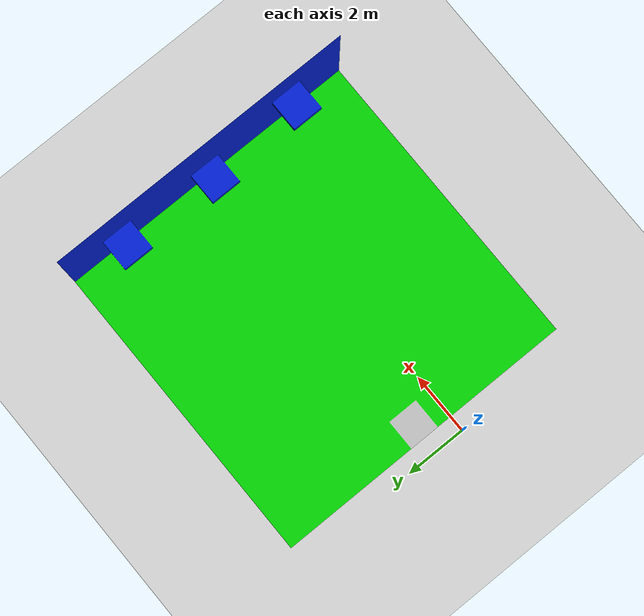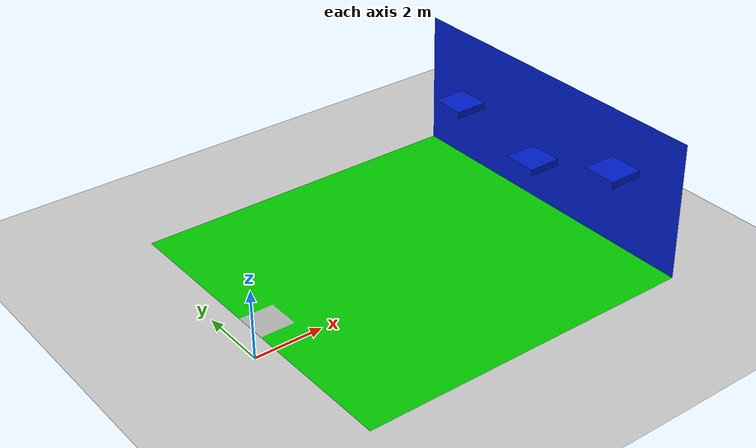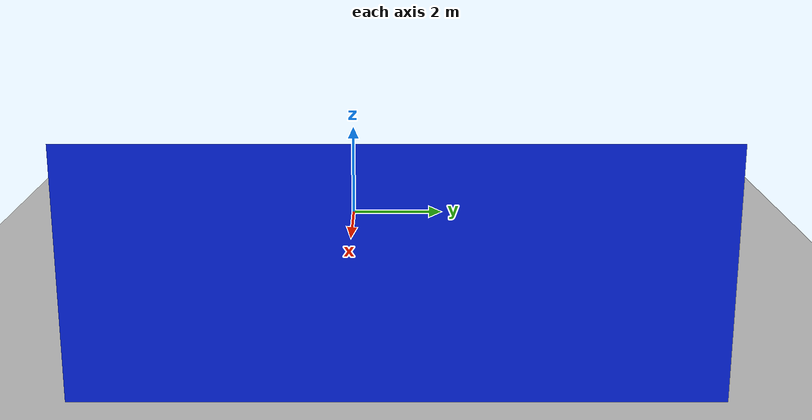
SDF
<sdf version="1.6">
 <world name="default">
  <light name="sun" type="directional">
   <pose>0 0 10 0 -0 0</pose>
   <diffuse>0.8 0.8 0.8 1</diffuse>
   <specular>0.2 0.2 0.2 1</specular>
   <attenuation>
    <range>1000</range>
    <constant>0.9</constant>
    <linear>0.01</linear>
    <quadratic>0.001</quadratic>
   </attenuation>
   <direction>-0.5 0.1 -0.9</direction>
  </light>
  <model name="ground_plane">
   <pose>0 0 0 0 -0 3.14159</pose>
   <static>1</static>
   <link name="link">
    <collision name="collision">
     <geometry><plane><normal>0 0 1</normal><size>100 100</size></plane></geometry>
     <surface>
      <contact><collide_bitmask>65535</collide_bitmask></contact>
      <friction><ode><mu>100</mu><mu2>50</mu2></ode></friction>
     </surface>
    </collision>
    <visual name="visual">
     <cast_shadows>0</cast_shadows>
     <geometry><plane><normal>0 0 1</normal><size>100 100</size></plane></geometry>
     <material>
      <script><uri>file://media/materials/scripts/gazebo.material</uri><name>Gazebo/Grey</name></script>
     </material>
    </visual>
   </link>
  </model>
  <gravity>0 0 -9.8</gravity>
  <magnetic_field>6e-06 2.3e-05 -4.2e-05</magnetic_field>
  <atmosphere type="adiabatic"/>
  <physics name="default_physics" default="0" type="ode">
   <max_step_size>0.001</max_step_size>
   <real_time_factor>1</real_time_factor>
   <real_time_update_rate>1000</real_time_update_rate>
  </physics>
  <scene><ambient>0.4 0.4 0.4 1</ambient><background>0.7 0.7 0.7 1</background><shadows>1</shadows></scene>
  <spherical_coordinates>
   <surface_model>EARTH_WGS84</surface_model>
   <latitude_deg>0</latitude_deg>
   <longitude_deg>0</longitude_deg>
   <elevation>0</elevation>
   <heading_deg>0</heading_deg>
  </spherical_coordinates>
  <model name="Arena KRTI 2020 Landing Pad">
   <pose>5.51768 0.987693 0.1 0 0 -3.14159</pose>
   <static>1</static>
   <link name="link">
    <collision name="collision">
     <geometry><mesh><uri>model://Arena_KRTI_Landing_Pad/meshes/mesh.dae</uri></mesh></geometry>
    </collision>
    <visual name="visual">
     <geometry><mesh><uri>model://Arena_KRTI_Landing_Pad/meshes/mesh.dae</uri></mesh></geometry>
    </visual>
   </link>
  </model>
  <light name="user_directional_light_0" type="directional">
   <pose>1.0662 -3.1799 1 0 -0 0</pose>
   <diffuse>0.5 0.5 0.5 1</diffuse>
   <specular>0.1 0.1 0.1 1</specular>
   <direction>0.1 0.1 -0.9</direction>
   <attenuation>
    <range>20</range>
    <constant>0.5</constant>
    <linear>0.01</linear>
    <quadratic>0.001</quadratic>
   </attenuation>
  </light>
  <light name="user_directional_light_1" type="directional">
   <pose>1.09378 5.18521 1 0 -0 0</pose>
   <diffuse>0.5 0.5 0.5 1</diffuse>
   <specular>0.1 0.1 0.1 1</specular>
   <direction>0.1 0.1 -0.9</direction>
   <attenuation>
    <range>20</range>
    <constant>0.5</constant>
    <linear>0.01</linear>
    <quadratic>0.001</quadratic>
   </attenuation>
  </light>
  <light name="user_directional_light_2" type="directional">
   <pose>9.58802 5.22221 1 0 -0 0</pose>
   <diffuse>0.5 0.5 0.5 1</diffuse>
   <specular>0.1 0.1 0.1 1</specular>
   <direction>0.1 0.1 -0.9</direction>
   <attenuation>
    <range>20</range>
    <constant>0.5</constant>
    <linear>0.01</linear>
    <quadratic>0.001</quadratic>
   </attenuation>
  </light>
  <light name="user_directional_light_3" type="directional">
   <pose>9.60212 -3.19689 1 0 -0 0</pose>
   <diffuse>0.5 0.5 0.5 1</diffuse>
   <specular>0.1 0.1 0.1 1</specular>
   <direction>0.1 0.1 -0.9</direction>
   <attenuation>
    <range>20</range>
    <constant>0.5</constant>
    <linear>0.01</linear>
    <quadratic>0.001</quadratic>
   </attenuation>
  </light>
  <light name="user_directional_light_4" type="directional">
   <pose>5.44813 0.987953 1 0 -0 0</pose>
   <diffuse>0.5 0.5 0.5 1</diffuse>
   <specular>0.1 0.1 0.1 1</specular>
   <direction>0.1 0.1 -0.9</direction>
   <attenuation>
    <range>20</range>
    <constant>0.5</constant>
    <linear>0.01</linear>
    <quadratic>0.001</quadratic>
   </attenuation>
  </light>
  <light name="user_directional_light_5" type="directional">
   <pose>5.46671 -3.19481 1 0 -0 0</pose>
   <diffuse>0.5 0.5 0.5 1</diffuse>
   <specular>0.1 0.1 0.1 1</specular>
   <direction>0.1 0.1 -0.9</direction>
   <attenuation>
    <range>20</range>
    <constant>0.5</constant>
    <linear>0.01</linear>
    <quadratic>0.001</quadratic>
   </attenuation>
  </light>
  <light name="user_directional_light_6" type="directional">
   <pose>5.45933 5.16041 1 0 -0 0</pose>
   <diffuse>0.5 0.5 0.5 1</diffuse>
   <specular>0.1 0.1 0.1 1</specular>
   <direction>0.1 0.1 -0.9</direction>
   <attenuation>
    <range>20</range>
    <constant>0.5</constant>
    <linear>0.01</linear>
    <quadratic>0.001</quadratic>
   </attenuation>
  </light>
  <light name="user_directional_light_7" type="directional">
   <pose>0.765586 0.717814 1 0 -0 0</pose>
   <diffuse>0.5 0.5 0.5 1</diffuse>
   <specular>0.1 0.1 0.1 1</specular>
   <direction>0.1 0.1 -0.9</direction>
   <attenuation>
    <range>20</range>
    <constant>0.5</constant>
    <linear>0.01</linear>
    <quadratic>0.001</quadratic>
   </attenuation>
  </light>
 </world>
</sdf>
